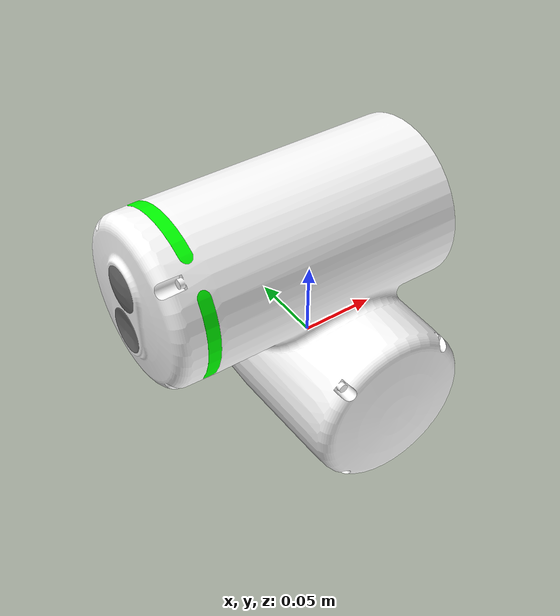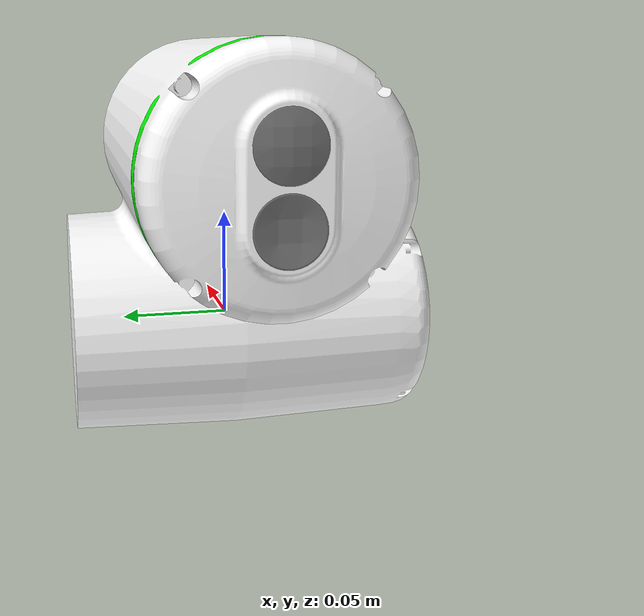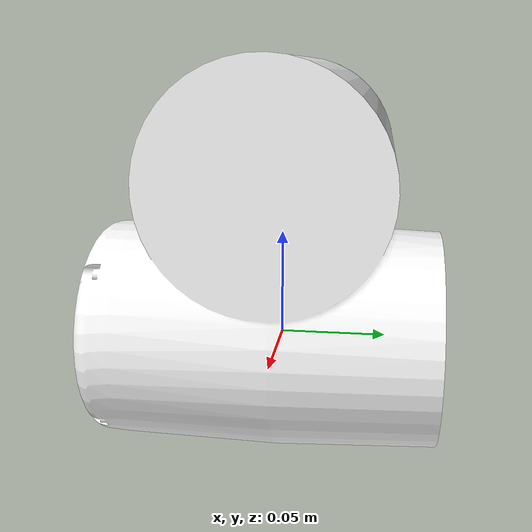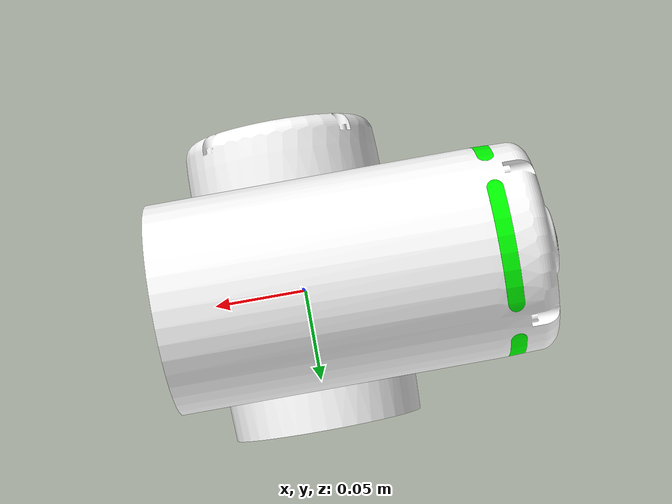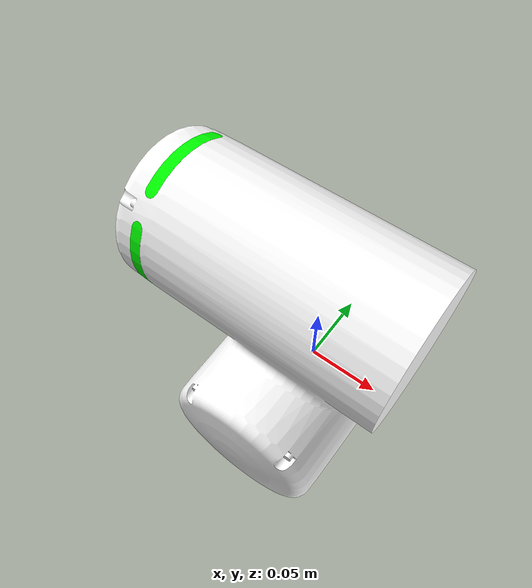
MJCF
<mujoco model="link_5">
  <default>
    <default class="visual">
      <geom group="2" type="mesh" contype="0" conaffinity="0"/>
    </default>
    <default class="collision">
      <geom group="3" type="mesh"/>
    </default>
  </default>
  <asset>
    <material name="material_link_5_0" specular="0.20000000000000004" shininess="1.0" rgba="0.00000000 1.00000000 0.00000000 1.0"/>
    <material name="material_link_5_1" specular="0.20000000000000004" shininess="1.0" rgba="0.43921569 0.43921569 0.43921569 1.0"/>
    <material name="material_link_5_2" specular="0.20000000000000004" shininess="1.0" rgba="1.00000000 1.00000000 1.00000000 1.0"/>
    <mesh file="link_5_0.obj"/>
    <mesh file="link_5_1.obj"/>
    <mesh file="link_5_2.obj"/>
  </asset>
  <worldbody>
    <body name="link_5">
      <geom mesh="link_5_0" material="material_link_5_2" class="visual"/>
      <geom mesh="link_5_1" material="material_link_5_1" class="visual"/>
      <geom mesh="link_5_2" material="material_link_5_0" class="visual"/>
      <geom mesh="link_5_0" class="collision"/>
      <geom mesh="link_5_1" class="collision"/>
      <geom mesh="link_5_2" class="collision"/>
    </body>
  </worldbody>
</mujoco>
